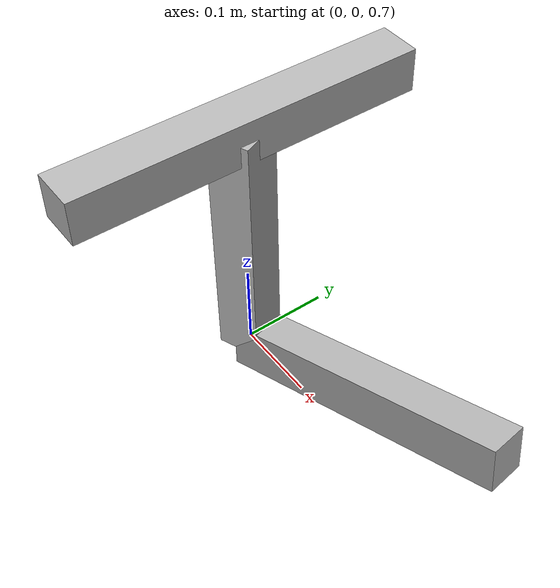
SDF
<sdf version='1.6'>
  <model name='myboat'>
    <link name='shoulder_link'>
      <pose frame=''>0 0 1 3.14159 -1.57079 3.14159</pose>
      <inertial>
        <pose frame=''>0 0 0 0 -0 0</pose>
        <mass>1</mass>
        <inertia>
          <ixx>0.013</ixx>
          <ixy>0</ixy>
          <ixz>0</ixz>
          <iyy>0.0004</iyy>
          <iyz>0</iyz>
          <izz>0.013</izz>
        </inertia>
      </inertial>
      <visual name='shoulder_link_visual'>
        <pose frame=''>0 0 0 0 -0 0</pose>
        <geometry>
          <box>
            <size>0.05 0.4 0.05</size>
          </box>
        </geometry>
      </visual>
    </link>
    <joint name='shoulder' type='revolute'>
      <child>shoulder_link</child>
      <parent>world</parent>
      <axis>
        <xyz>0 0 1</xyz>
        <limit>
          <lower>0</lower>
          <upper>0.5</upper>
          <effort>101</effort>
          <velocity>1</velocity>
        </limit>
        <dynamics>
          <damping>0.005</damping>
          <friction>0</friction>
          <spring_reference>0</spring_reference>
          <spring_stiffness>0</spring_stiffness>
        </dynamics>
        <use_parent_model_frame>1</use_parent_model_frame>
      </axis>
    </joint>
    <link name='arm_l_upper'>
      <pose frame=''>0 0 1 -2.75689 -1.57079 3.14159</pose>
      <inertial>
        <pose frame=''>-0.15 0 0 0 -0 0</pose>
        <mass>1</mass>
        <inertia>
          <ixx>0.00041</ixx>
          <ixy>0</ixy>
          <ixz>0</ixz>
          <iyy>0.01</iyy>
          <iyz>0</iyz>
          <izz>0.01</izz>
        </inertia>
      </inertial>
      <visual name='arm_l_upper_visual'>
        <pose frame=''>-0.15 0 0 0 -0 0</pose>
        <geometry>
          <box>
            <size>0.3 0.05 0.05</size>
          </box>
        </geometry>
      </visual>
    </link>
    <joint name='shoulder_theta_l' type='revolute'>
      <child>arm_l_upper</child>
      <parent>shoulder_link</parent>
      <axis>
        <xyz>0 0 1</xyz>
        <limit>
          <lower>-1</lower>
          <upper>1</upper>
          <effort>101</effort>
          <velocity>1</velocity>
        </limit>
        <dynamics>
          <damping>0.005</damping>
          <friction>0</friction>
          <spring_reference>0</spring_reference>
          <spring_stiffness>0</spring_stiffness>
        </dynamics>
        <use_parent_model_frame>1</use_parent_model_frame>
      </axis>
    </joint>
    <link name='left_elbow_theta_link'>
      <pose frame=''>-0 0 0.7 -0 0.1878 -2.75689</pose>
      <inertial>
        <pose frame=''>0 0 0 0 -0 0</pose>
        <mass>1</mass>
        <inertia>
          <ixx>1.67e-05</ixx>
          <ixy>0</ixy>
          <ixz>0</ixz>
          <iyy>1.67e-05</iyy>
          <iyz>0</iyz>
          <izz>1.67e-05</izz>
        </inertia>
      </inertial>
      <visual name='left_elbow_theta_link_visual'>
        <pose frame=''>0 0 0 0 -0 0</pose>
        <geometry>
          <box>
            <size>0.01 0.01 0.01</size>
          </box>
        </geometry>
      </visual>
    </link>
    <joint name='elbow_xx_l' type='revolute'>
      <child>left_elbow_theta_link</child>
      <parent>arm_l_upper</parent>
      <axis>
        <xyz>0.375281 -0.926911 -0</xyz>
        <limit>
          <lower>-1.7708</lower>
          <upper>1.5708</upper>
          <effort>101</effort>
          <velocity>1</velocity>
        </limit>
        <dynamics>
          <damping>0.005</damping>
          <friction>0</friction>
          <spring_reference>0</spring_reference>
          <spring_stiffness>0</spring_stiffness>
        </dynamics>
        <use_parent_model_frame>1</use_parent_model_frame>
      </axis>
    </joint>
    <link name='left_elbow_psi_link'>
      <pose frame=''>-0 0 0.7 -0.028654 0.185627 -2.91096</pose>
      <inertial>
        <pose frame=''>0 0 0 0 -0 0</pose>
        <mass>1</mass>
        <inertia>
          <ixx>1.67e-05</ixx>
          <ixy>0</ixy>
          <ixz>0</ixz>
          <iyy>1.67e-05</iyy>
          <iyz>0</iyz>
          <izz>1.67e-05</izz>
        </inertia>
      </inertial>
      <visual name='left_elbow_psi_link_visual'>
        <pose frame=''>0 0 0 0 -0 0</pose>
        <geometry>
          <box>
            <size>0.01 0.01 0.01</size>
          </box>
        </geometry>
      </visual>
    </link>
    <joint name='elbow_theta_l' type='revolute'>
      <child>left_elbow_psi_link</child>
      <parent>left_elbow_theta_link</parent>
      <axis>
        <xyz>0.173052 0.070064 -0.982417</xyz>
        <limit>
          <lower>-0.7</lower>
          <upper>2</upper>
          <effort>101</effort>
          <velocity>1</velocity>
        </limit>
        <dynamics>
          <damping>0.005</damping>
          <friction>0</friction>
          <spring_reference>0</spring_reference>
          <spring_stiffness>0</spring_stiffness>
        </dynamics>
        <use_parent_model_frame>1</use_parent_model_frame>
      </axis>
    </joint>
    <link name='arm_l_lower'>
      <pose frame=''>-0 0 0.7 0.185246 0.185627 -2.91096</pose>
      <inertial>
        <pose frame=''>-0.175 0 0 0 -0 0</pose>
        <mass>1</mass>
        <inertia>
          <ixx>0.00041</ixx>
          <ixy>0</ixy>
          <ixz>0</ixz>
          <iyy>0.0135</iyy>
          <iyz>0</iyz>
          <izz>0.0135</izz>
        </inertia>
      </inertial>
      <visual name='arm_l_lower_visual'>
        <pose frame=''>-0.175 0 0 0 -0 0</pose>
        <geometry>
          <box>
            <size>0.35 0.05 0.05</size>
          </box>
        </geometry>
      </visual>
    </link>
    <joint name='elbow_left' type='revolute'>
      <child>arm_l_lower</child>
      <parent>left_elbow_psi_link</parent>
      <axis>
        <xyz>-0.956798 -0.224666 -0.184562</xyz>
        <limit>
          <lower>-1</lower>
          <upper>1</upper>
          <effort>101</effort>
          <velocity>1</velocity>
        </limit>
        <dynamics>
          <damping>0.005</damping>
          <friction>0</friction>
          <spring_reference>0</spring_reference>
          <spring_stiffness>0</spring_stiffness>
        </dynamics>
        <use_parent_model_frame>1</use_parent_model_frame>
      </axis>
    </joint>
  </model>
</sdf>
